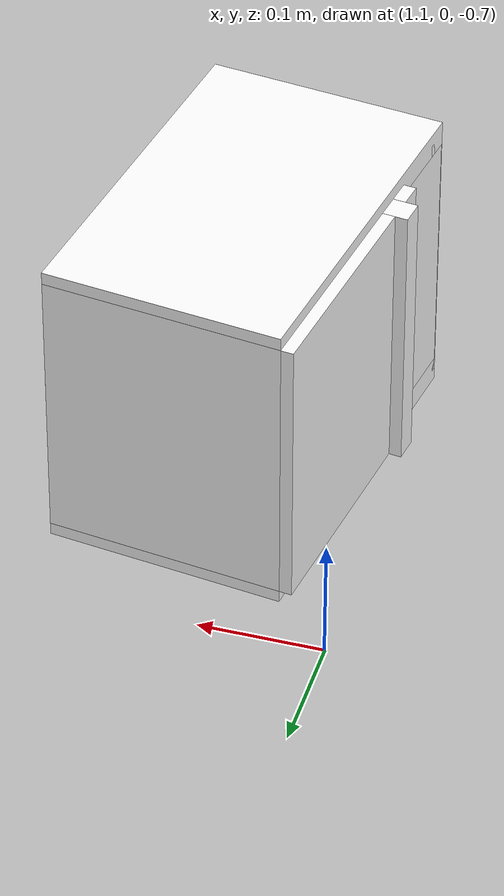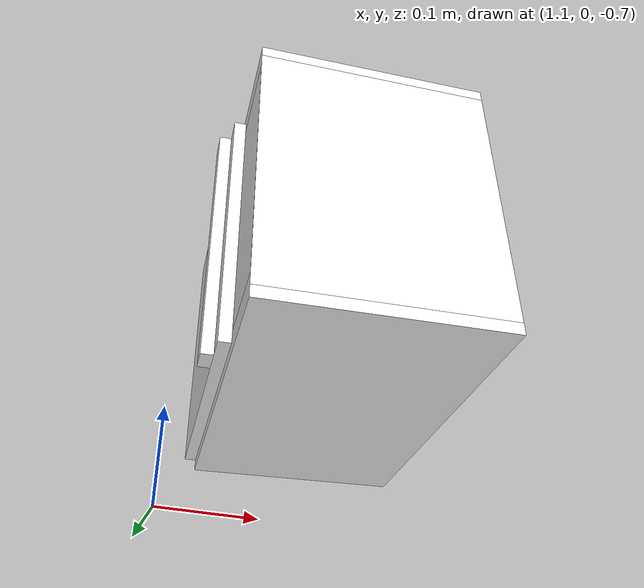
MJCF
<mujoco model="cabinet">
    <compiler angle="radian" eulerseq='zxy' />
    <option gravity = "0 0 0" />
    <option>
        <flag contact = "disable"/>
    </option>
    <statistic	extent="1.0" center="0.0 0.0 0.0"/>
    <visual>
        <map fogstart="3" fogend="5" force="0.1" znear=" 0.100000 " zfar=" 12.000000 "/>
    </visual>
    <size njmax="500" nconmax="100" />
    <actuator>
        <velocity joint="bottom_left_hinge" name="viva_revolution" kv='10'></velocity>
    </actuator>
    <asset>
        <texture builtin="flat" name="tabletex" height="32" width="32" rgb1="1 1 1" type="cube"></texture>
        <texture builtin="flat" name="objtex" height="32" width="32" rgb1="1 1 1" type="cube"></texture>
        <texture builtin="flat" name="handletex" height="32" width="32" rgb1="1 1 1" type="cube"></texture>
        <texture builtin="flat" name="wallpaper" height="32" width="32" rgb1="1 0 0" type="cube"></texture>
        <texture builtin="flat" name="kp" height="32" width="32" rgb1="1 1 1" type="cube"></texture>
        <material name="geomTable" shininess="0.03" specular="0.75" texture="tabletex"></material>
        <material name="geomObj" shininess="0.03" specular="0.75" texture="objtex"></material>
        <material name="geomHandle" shininess="0.03" specular="0.75" texture="handletex"></material>
        <material name="ax" shininess="0.03" specular="0.75" texture="wallpaper"></material>
        <material name="bg" shininess="0.03" specular="0.75" texture="wallpaper"></material>
        <material name="geomKeypad" shininess="0.03" specular="0.75" texture="kp"></material>
    </asset>
    <worldbody>
        <body name="cabinet_bottom" pos= " 1.208683 -0.158994 -0.649406 "  quat= " 0.069252 0.000000 0.000000 0.997599" >
            <inertial pos="0 0 0" mass="1" diaginertia="1 1 1" />
            <geom size= " 0.094787 0.148820 0.009993 "  type="box" material="geomObj" name="b"/>
            <body name="cabinet_left" pos= " 0.000000 -0.138828 0.112359 " >
                <inertial pos="0 0 0" mass="1" diaginertia="1 1 1" />
                <geom size= " 0.094787 0.009993 0.112359 "  type="box" material="geomObj" name="c" />
            </body>
            <body name="cabinet_right" pos= " 0.000000 0.138828 0.112359 " >
                <inertial pos="0 0 0" mass="1" diaginertia="1 1 1" />
                <geom size= " 0.094787 0.009993 0.112359 "  type="box" material="geomObj" name="d" />
            </body>
            <body name="cabinet_top" pos= " 0.000000 0.000000 0.224718 " >
                <inertial pos="0 0 0" mass="1" diaginertia="1 1 1" />
                <geom size= " 0.094787 0.148820 0.009993 "  type="box" material="geomObj" name="e"/>
            </body>
            <body name="cabinet_back" pos= " -0.084795 0.000000 0.112359 "  >
                <inertial pos="0 0 0" mass="1" diaginertia="1 1 1" />
                <geom size= " 0.009993 0.148820 0.112359 "  type="box" material="geomObj" name="f" />
            </body>
            <body name="cabinet_keypad" pos= " 0.009993 0.110615 0.112359 " >
                <inertial pos="0 0 0" mass="1" diaginertia="1 1 1" />
                <geom size= " 0.084795 0.037205 0.102366 "  type="box" material="geomKeypad" name="keypizzlemynizzle" />
            </body>
            <body name="cabinet_left_hinge" pos= " 0.094787 -0.148820 0.112359 " >
                <inertial pos= " 0.000000 0.111615 0.000000 "  mass="1" diaginertia="1 1 1" />
                <joint name="bottom_left_hinge" type="hinge" pos="0 0 0" axis="0 0 1" limited="true" range= "-2.3 0"  />
                <geom size= " 0.009993 0.111615 0.112359 "  pos= " 0.000000 0.111615 0.000000 "  type="box" material="geomObj" name="g"/>
                <body name="handle_link" pos= " 0.010000 0.193231 0.000000 " >
                    <inertial pos="0 0 0" mass="1" diaginertia="1 1 1" />
                    <geom size= " 0.010000 0.010000 0.112359 "  type="box" material="geomHandle" name="h"/>
                </body>
            </body>
        </body>
        <body name="external_camera_body_0" pos="0.0 0 0.00" >
            <camera euler="-1.57 1.57 0.0" fovy=" 54.280851 " name="external_camera_0" pos="0.0 0 0"></camera>
            <inertial pos= " 0.00 0.0 0.000000 " mass="1" diaginertia="1 1 1" />
            <joint name="cam_j" pos="0.0 0 0" axis = "1 0 0" type="free" />
        </body>
    </worldbody>
</mujoco>
